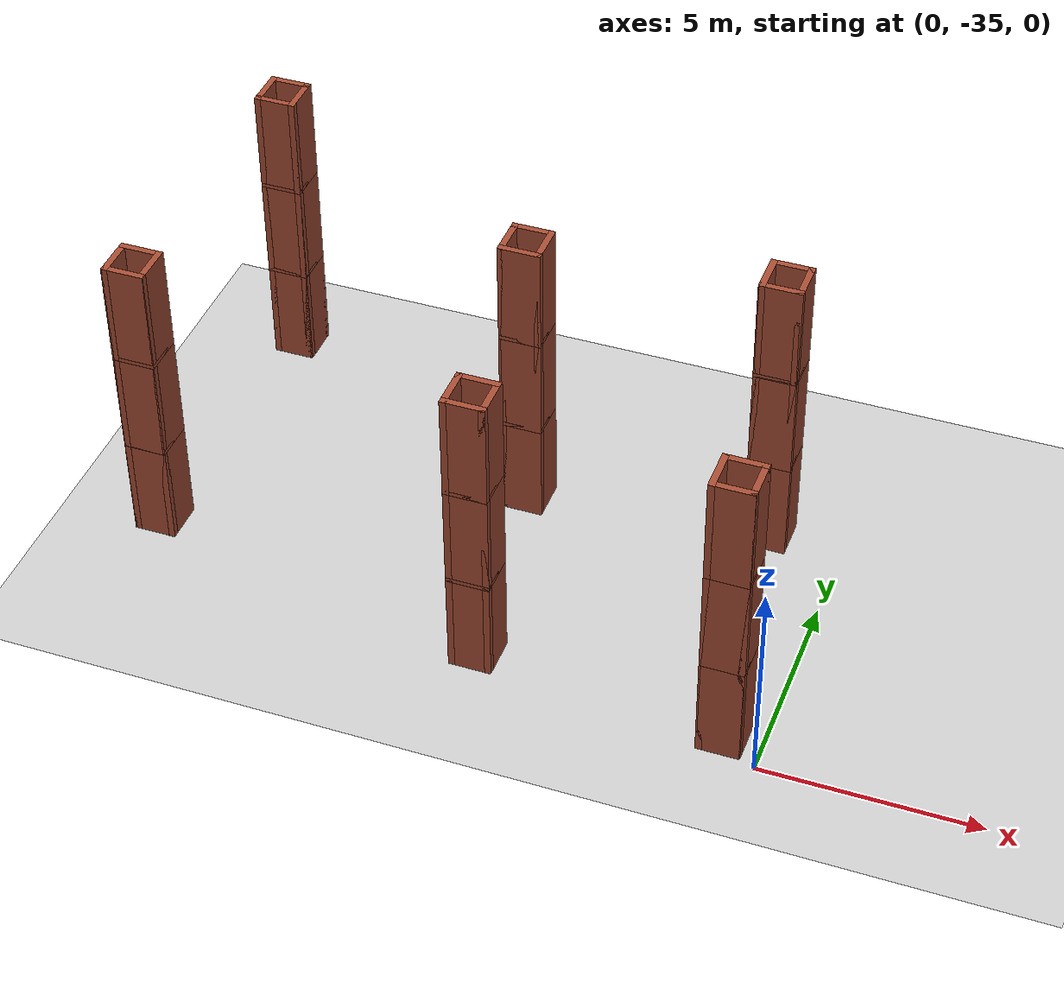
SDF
<sdf version="1.7">
 <world name="default">
  <model name="ground_plane">
   <static>1</static>
   <link name="link">
    <collision name="collision">
     <geometry><plane><normal>0 0 1</normal><size>100 100</size></plane></geometry>
     <surface>
      <contact><collide_bitmask>65535</collide_bitmask></contact>
      <friction><ode><mu>100</mu><mu2>50</mu2></ode></friction>
     </surface>
    </collision>
    <visual name="visual">
     <cast_shadows>0</cast_shadows>
     <geometry><plane><normal>0 0 1</normal><size>100 100</size></plane></geometry>
     <material>
      <script><uri>file://media/materials/scripts/gazebo.material</uri><name>Gazebo/Grey</name></script>
     </material>
    </visual>
   </link>
  </model>
  <model name="wall_model">
   <pose>2.36108 -35 0 0 -0 0</pose>
   <link name="Floor_3">
    <collision name="Floor_3_Collision">
     <geometry><box><size>1 1 0.1</size></box></geometry>
     <pose>0 0 0.05 0 -0 0</pose>
    </collision>
    <visual name="Floor_3_Visual">
     <pose>0 0 0.05 0 -0 0</pose>
     <geometry><box><size>1 1 0.1</size></box></geometry>
     <material>
      <script><uri>file://media/materials/scripts/gazebo.material</uri><name>Gazebo/Bricks</name></script>
      <ambient>1 1 1 1</ambient>
     </material>
     <meta><layer>1</layer></meta>
    </visual>
    <pose>-3.21504 0.623396 2.5 0 -0 0</pose>
   </link>
   <link name="Floor_4">
    <collision name="Floor_4_Collision">
     <geometry><box><size>1 1 0.1</size></box></geometry>
     <pose>0 0 0.05 0 -0 0</pose>
    </collision>
    <visual name="Floor_4_Visual">
     <pose>0 0 0.05 0 -0 0</pose>
     <geometry><box><size>1 1 0.1</size></box></geometry>
     <material>
      <script><uri>file://media/materials/scripts/gazebo.material</uri><name>Gazebo/Bricks</name></script>
      <ambient>1 1 1 1</ambient>
     </material>
     <meta><layer>2</layer></meta>
    </visual>
    <pose>-3.21504 0.623396 5 0 -0 0</pose>
   </link>
   <link name="Wall_19">
    <collision name="Wall_19_Collision">
     <geometry><box><size>1 0.15 2.5</size></box></geometry>
     <pose>0 0 1.25 0 -0 0</pose>
    </collision>
    <visual name="Wall_19_Visual">
     <pose>0 0 1.25 0 -0 0</pose>
     <geometry><box><size>1 0.15 2.5</size></box></geometry>
     <material>
      <script><uri>file://media/materials/scripts/gazebo.material</uri><name>Gazebo/Bricks</name></script>
      <ambient>1 1 1 1</ambient>
     </material>
     <meta><layer>0</layer></meta>
    </visual>
    <pose>-3.64004 0.623396 0 0 -0 1.5708</pose>
   </link>
   <link name="Wall_21">
    <collision name="Wall_21_Collision">
     <geometry><box><size>1 0.15 2.5</size></box></geometry>
     <pose>0 0 1.25 0 -0 0</pose>
    </collision>
    <visual name="Wall_21_Visual">
     <pose>0 0 1.25 0 -0 0</pose>
     <geometry><box><size>1 0.15 2.5</size></box></geometry>
     <material>
      <script><uri>file://media/materials/scripts/gazebo.material</uri><name>Gazebo/Bricks</name></script>
      <ambient>1 1 1 1</ambient>
     </material>
     <meta><layer>0</layer></meta>
    </visual>
    <pose>-3.21504 1.0484 0 0 -0 0</pose>
   </link>
   <link name="Wall_22">
    <collision name="Wall_22_Collision">
     <geometry><box><size>1 0.15 2.5</size></box></geometry>
     <pose>0 0 1.25 0 -0 0</pose>
    </collision>
    <visual name="Wall_22_Visual">
     <pose>0 0 1.25 0 -0 0</pose>
     <geometry><box><size>1 0.15 2.5</size></box></geometry>
     <material>
      <script><uri>file://media/materials/scripts/gazebo.material</uri><name>Gazebo/Bricks</name></script>
      <ambient>1 1 1 1</ambient>
     </material>
     <meta><layer>0</layer></meta>
    </visual>
    <pose>-2.79004 0.623396 0 0 -0 -1.5708</pose>
   </link>
   <link name="Wall_23">
    <collision name="Wall_23_Collision">
     <geometry><box><size>1 0.15 2.5</size></box></geometry>
     <pose>0 0 1.25 0 -0 0</pose>
    </collision>
    <visual name="Wall_23_Visual">
     <pose>0 0 1.25 0 -0 0</pose>
     <geometry><box><size>1 0.15 2.5</size></box></geometry>
     <material>
      <script><uri>file://media/materials/scripts/gazebo.material</uri><name>Gazebo/Bricks</name></script>
      <ambient>1 1 1 1</ambient>
     </material>
     <meta><layer>0</layer></meta>
    </visual>
    <pose>-3.21504 0.198396 0 0 -0 3.14159</pose>
   </link>
   <link name="Wall_25">
    <collision name="Wall_25_Collision">
     <geometry><box><size>1 0.15 2.5</size></box></geometry>
     <pose>0 0 1.25 0 -0 0</pose>
    </collision>
    <visual name="Wall_25_Visual">
     <pose>0 0 1.25 0 -0 0</pose>
     <geometry><box><size>1 0.15 2.5</size></box></geometry>
     <material>
      <script><uri>file://media/materials/scripts/gazebo.material</uri><name>Gazebo/Bricks</name></script>
      <ambient>1 1 1 1</ambient>
     </material>
     <meta><layer>1</layer></meta>
    </visual>
    <pose>-3.64004 0.623396 2.5 0 -0 1.5708</pose>
   </link>
   <link name="Wall_26">
    <collision name="Wall_26_Collision">
     <geometry><box><size>1 0.15 2.5</size></box></geometry>
     <pose>0 0 1.25 0 -0 0</pose>
    </collision>
    <visual name="Wall_26_Visual">
     <pose>0 0 1.25 0 -0 0</pose>
     <geometry><box><size>1 0.15 2.5</size></box></geometry>
     <material>
      <script><uri>file://media/materials/scripts/gazebo.material</uri><name>Gazebo/Bricks</name></script>
      <ambient>1 1 1 1</ambient>
     </material>
     <meta><layer>1</layer></meta>
    </visual>
    <pose>-3.21504 1.0484 2.5 0 -0 0</pose>
   </link>
   <link name="Wall_27">
    <collision name="Wall_27_Collision">
     <geometry><box><size>1 0.15 2.5</size></box></geometry>
     <pose>0 0 1.25 0 -0 0</pose>
    </collision>
    <visual name="Wall_27_Visual">
     <pose>0 0 1.25 0 -0 0</pose>
     <geometry><box><size>1 0.15 2.5</size></box></geometry>
     <material>
      <script><uri>file://media/materials/scripts/gazebo.material</uri><name>Gazebo/Bricks</name></script>
      <ambient>1 1 1 1</ambient>
     </material>
     <meta><layer>1</layer></meta>
    </visual>
    <pose>-2.79004 0.623396 2.5 0 -0 -1.5708</pose>
   </link>
   <link name="Wall_28">
    <collision name="Wall_28_Collision">
     <geometry><box><size>1 0.15 2.5</size></box></geometry>
     <pose>0 0 1.25 0 -0 0</pose>
    </collision>
    <visual name="Wall_28_Visual">
     <pose>0 0 1.25 0 -0 0</pose>
     <geometry><box><size>1 0.15 2.5</size></box></geometry>
     <material>
      <script><uri>file://media/materials/scripts/gazebo.material</uri><name>Gazebo/Bricks</name></script>
      <ambient>1 1 1 1</ambient>
     </material>
     <meta><layer>1</layer></meta>
    </visual>
    <pose>-3.21504 0.198396 2.5 0 -0 3.14159</pose>
   </link>
   <link name="Wall_29">
    <collision name="Wall_29_Collision">
     <geometry><box><size>1 0.15 2.5</size></box></geometry>
     <pose>0 0 1.25 0 -0 0</pose>
    </collision>
    <visual name="Wall_29_Visual">
     <pose>0 0 1.25 0 -0 0</pose>
     <geometry><box><size>1 0.15 2.5</size></box></geometry>
     <material>
      <script><uri>file://media/materials/scripts/gazebo.material</uri><name>Gazebo/Bricks</name></script>
      <ambient>1 1 1 1</ambient>
     </material>
     <meta><layer>2</layer></meta>
    </visual>
    <pose>-3.64004 0.623396 5 0 -0 1.5708</pose>
   </link>
   <link name="Wall_30">
    <collision name="Wall_30_Collision">
     <geometry><box><size>1 0.15 2.5</size></box></geometry>
     <pose>0 0 1.25 0 -0 0</pose>
    </collision>
    <visual name="Wall_30_Visual">
     <pose>0 0 1.25 0 -0 0</pose>
     <geometry><box><size>1 0.15 2.5</size></box></geometry>
     <material>
      <script><uri>file://media/materials/scripts/gazebo.material</uri><name>Gazebo/Bricks</name></script>
      <ambient>1 1 1 1</ambient>
     </material>
     <meta><layer>2</layer></meta>
    </visual>
    <pose>-3.21504 1.0484 5 0 -0 0</pose>
   </link>
   <link name="Wall_31">
    <collision name="Wall_31_Collision">
     <geometry><box><size>1 0.15 2.5</size></box></geometry>
     <pose>0 0 1.25 0 -0 0</pose>
    </collision>
    <visual name="Wall_31_Visual">
     <pose>0 0 1.25 0 -0 0</pose>
     <geometry><box><size>1 0.15 2.5</size></box></geometry>
     <material>
      <script><uri>file://media/materials/scripts/gazebo.material</uri><name>Gazebo/Bricks</name></script>
      <ambient>1 1 1 1</ambient>
     </material>
     <meta><layer>2</layer></meta>
    </visual>
    <pose>-2.79004 0.623396 5 0 -0 -1.5708</pose>
   </link>
   <link name="Wall_32">
    <collision name="Wall_32_Collision">
     <geometry><box><size>1 0.15 2.5</size></box></geometry>
     <pose>0 0 1.25 0 -0 0</pose>
    </collision>
    <visual name="Wall_32_Visual">
     <pose>0 0 1.25 0 -0 0</pose>
     <geometry><box><size>1 0.15 2.5</size></box></geometry>
     <material>
      <script><uri>file://media/materials/scripts/gazebo.material</uri><name>Gazebo/Bricks</name></script>
      <ambient>1 1 1 1</ambient>
     </material>
     <meta><layer>2</layer></meta>
    </visual>
    <pose>-3.21504 0.198396 5 0 -0 3.14159</pose>
   </link>
   <static>1</static>
  </model>
  <model name="wall_model_clone_2">
   <pose>1.47387 -28.567 0 0 -0 0</pose>
   <link name="Floor_3">
    <collision name="Floor_3_Collision">
     <geometry><box><size>1 1 0.1</size></box></geometry>
     <pose>0 0 0.05 0 -0 0</pose>
    </collision>
    <visual name="Floor_3_Visual">
     <pose>0 0 0.05 0 -0 0</pose>
     <geometry><box><size>1 1 0.1</size></box></geometry>
     <material>
      <script><uri>file://media/materials/scripts/gazebo.material</uri><name>Gazebo/Bricks</name></script>
      <ambient>1 1 1 1</ambient>
     </material>
     <meta><layer>1</layer></meta>
    </visual>
    <pose>-3.21504 0.623396 2.5 0 -0 0</pose>
   </link>
   <link name="Floor_4">
    <collision name="Floor_4_Collision">
     <geometry><box><size>1 1 0.1</size></box></geometry>
     <pose>0 0 0.05 0 -0 0</pose>
    </collision>
    <visual name="Floor_4_Visual">
     <pose>0 0 0.05 0 -0 0</pose>
     <geometry><box><size>1 1 0.1</size></box></geometry>
     <material>
      <script><uri>file://media/materials/scripts/gazebo.material</uri><name>Gazebo/Bricks</name></script>
      <ambient>1 1 1 1</ambient>
     </material>
     <meta><layer>2</layer></meta>
    </visual>
    <pose>-3.21504 0.623396 5 0 -0 0</pose>
   </link>
   <link name="Wall_19">
    <collision name="Wall_19_Collision">
     <geometry><box><size>1 0.15 2.5</size></box></geometry>
     <pose>0 0 1.25 0 -0 0</pose>
    </collision>
    <visual name="Wall_19_Visual">
     <pose>0 0 1.25 0 -0 0</pose>
     <geometry><box><size>1 0.15 2.5</size></box></geometry>
     <material>
      <script><uri>file://media/materials/scripts/gazebo.material</uri><name>Gazebo/Bricks</name></script>
      <ambient>1 1 1 1</ambient>
     </material>
     <meta><layer>0</layer></meta>
    </visual>
    <pose>-3.64004 0.623396 0 0 -0 1.5708</pose>
   </link>
   <link name="Wall_21">
    <collision name="Wall_21_Collision">
     <geometry><box><size>1 0.15 2.5</size></box></geometry>
     <pose>0 0 1.25 0 -0 0</pose>
    </collision>
    <visual name="Wall_21_Visual">
     <pose>0 0 1.25 0 -0 0</pose>
     <geometry><box><size>1 0.15 2.5</size></box></geometry>
     <material>
      <script><uri>file://media/materials/scripts/gazebo.material</uri><name>Gazebo/Bricks</name></script>
      <ambient>1 1 1 1</ambient>
     </material>
     <meta><layer>0</layer></meta>
    </visual>
    <pose>-3.21504 1.0484 0 0 -0 0</pose>
   </link>
   <link name="Wall_22">
    <collision name="Wall_22_Collision">
     <geometry><box><size>1 0.15 2.5</size></box></geometry>
     <pose>0 0 1.25 0 -0 0</pose>
    </collision>
    <visual name="Wall_22_Visual">
     <pose>0 0 1.25 0 -0 0</pose>
     <geometry><box><size>1 0.15 2.5</size></box></geometry>
     <material>
      <script><uri>file://media/materials/scripts/gazebo.material</uri><name>Gazebo/Bricks</name></script>
      <ambient>1 1 1 1</ambient>
     </material>
     <meta><layer>0</layer></meta>
    </visual>
    <pose>-2.79004 0.623396 0 0 -0 -1.5708</pose>
   </link>
   <link name="Wall_23">
    <collision name="Wall_23_Collision">
     <geometry><box><size>1 0.15 2.5</size></box></geometry>
     <pose>0 0 1.25 0 -0 0</pose>
    </collision>
    <visual name="Wall_23_Visual">
     <pose>0 0 1.25 0 -0 0</pose>
     <geometry><box><size>1 0.15 2.5</size></box></geometry>
     <material>
      <script><uri>file://media/materials/scripts/gazebo.material</uri><name>Gazebo/Bricks</name></script>
      <ambient>1 1 1 1</ambient>
     </material>
     <meta><layer>0</layer></meta>
    </visual>
    <pose>-3.21504 0.198396 0 0 -0 3.14159</pose>
   </link>
   <link name="Wall_25">
    <collision name="Wall_25_Collision">
     <geometry><box><size>1 0.15 2.5</size></box></geometry>
     <pose>0 0 1.25 0 -0 0</pose>
    </collision>
    <visual name="Wall_25_Visual">
     <pose>0 0 1.25 0 -0 0</pose>
     <geometry><box><size>1 0.15 2.5</size></box></geometry>
     <material>
      <script><uri>file://media/materials/scripts/gazebo.material</uri><name>Gazebo/Bricks</name></script>
      <ambient>1 1 1 1</ambient>
     </material>
     <meta><layer>1</layer></meta>
    </visual>
    <pose>-3.64004 0.623396 2.5 0 -0 1.5708</pose>
   </link>
   <link name="Wall_26">
    <collision name="Wall_26_Collision">
     <geometry><box><size>1 0.15 2.5</size></box></geometry>
     <pose>0 0 1.25 0 -0 0</pose>
    </collision>
    <visual name="Wall_26_Visual">
     <pose>0 0 1.25 0 -0 0</pose>
     <geometry><box><size>1 0.15 2.5</size></box></geometry>
     <material>
      <script><uri>file://media/materials/scripts/gazebo.material</uri><name>Gazebo/Bricks</name></script>
      <ambient>1 1 1 1</ambient>
     </material>
     <meta><layer>1</layer></meta>
    </visual>
    <pose>-3.21504 1.0484 2.5 0 -0 0</pose>
   </link>
   <link name="Wall_27">
    <collision name="Wall_27_Collision">
     <geometry><box><size>1 0.15 2.5</size></box></geometry>
     <pose>0 0 1.25 0 -0 0</pose>
    </collision>
    <visual name="Wall_27_Visual">
     <pose>0 0 1.25 0 -0 0</pose>
     <geometry><box><size>1 0.15 2.5</size></box></geometry>
     <material>
      <script><uri>file://media/materials/scripts/gazebo.material</uri><name>Gazebo/Bricks</name></script>
      <ambient>1 1 1 1</ambient>
     </material>
     <meta><layer>1</layer></meta>
    </visual>
    <pose>-2.79004 0.623396 2.5 0 -0 -1.5708</pose>
   </link>
   <link name="Wall_28">
    <collision name="Wall_28_Collision">
     <geometry><box><size>1 0.15 2.5</size></box></geometry>
     <pose>0 0 1.25 0 -0 0</pose>
    </collision>
    <visual name="Wall_28_Visual">
     <pose>0 0 1.25 0 -0 0</pose>
     <geometry><box><size>1 0.15 2.5</size></box></geometry>
     <material>
      <script><uri>file://media/materials/scripts/gazebo.material</uri><name>Gazebo/Bricks</name></script>
      <ambient>1 1 1 1</ambient>
     </material>
     <meta><layer>1</layer></meta>
    </visual>
    <pose>-3.21504 0.198396 2.5 0 -0 3.14159</pose>
   </link>
   <link name="Wall_29">
    <collision name="Wall_29_Collision">
     <geometry><box><size>1 0.15 2.5</size></box></geometry>
     <pose>0 0 1.25 0 -0 0</pose>
    </collision>
    <visual name="Wall_29_Visual">
     <pose>0 0 1.25 0 -0 0</pose>
     <geometry><box><size>1 0.15 2.5</size></box></geometry>
     <material>
      <script><uri>file://media/materials/scripts/gazebo.material</uri><name>Gazebo/Bricks</name></script>
      <ambient>1 1 1 1</ambient>
     </material>
     <meta><layer>2</layer></meta>
    </visual>
    <pose>-3.64004 0.623396 5 0 -0 1.5708</pose>
   </link>
   <link name="Wall_30">
    <collision name="Wall_30_Collision">
     <geometry><box><size>1 0.15 2.5</size></box></geometry>
     <pose>0 0 1.25 0 -0 0</pose>
    </collision>
    <visual name="Wall_30_Visual">
     <pose>0 0 1.25 0 -0 0</pose>
     <geometry><box><size>1 0.15 2.5</size></box></geometry>
     <material>
      <script><uri>file://media/materials/scripts/gazebo.material</uri><name>Gazebo/Bricks</name></script>
      <ambient>1 1 1 1</ambient>
     </material>
     <meta><layer>2</layer></meta>
    </visual>
    <pose>-3.21504 1.0484 5 0 -0 0</pose>
   </link>
   <link name="Wall_31">
    <collision name="Wall_31_Collision">
     <geometry><box><size>1 0.15 2.5</size></box></geometry>
     <pose>0 0 1.25 0 -0 0</pose>
    </collision>
    <visual name="Wall_31_Visual">
     <pose>0 0 1.25 0 -0 0</pose>
     <geometry><box><size>1 0.15 2.5</size></box></geometry>
     <material>
      <script><uri>file://media/materials/scripts/gazebo.material</uri><name>Gazebo/Bricks</name></script>
      <ambient>1 1 1 1</ambient>
     </material>
     <meta><layer>2</layer></meta>
    </visual>
    <pose>-2.79004 0.623396 5 0 -0 -1.5708</pose>
   </link>
   <link name="Wall_32">
    <collision name="Wall_32_Collision">
     <geometry><box><size>1 0.15 2.5</size></box></geometry>
     <pose>0 0 1.25 0 -0 0</pose>
    </collision>
    <visual name="Wall_32_Visual">
     <pose>0 0 1.25 0 -0 0</pose>
     <geometry><box><size>1 0.15 2.5</size></box></geometry>
     <material>
      <script><uri>file://media/materials/scripts/gazebo.material</uri><name>Gazebo/Bricks</name></script>
      <ambient>1 1 1 1</ambient>
     </material>
     <meta><layer>2</layer></meta>
    </visual>
    <pose>-3.21504 0.198396 5 0 -0 3.14159</pose>
   </link>
   <static>1</static>
  </model>
  <model name="wall_model_clone_6">
   <pose>-4.21999 -29.2174 0 0 -0 0</pose>
   <link name="Floor_3">
    <collision name="Floor_3_Collision">
     <geometry><box><size>1 1 0.1</size></box></geometry>
     <pose>0 0 0.05 0 -0 0</pose>
    </collision>
    <visual name="Floor_3_Visual">
     <pose>0 0 0.05 0 -0 0</pose>
     <geometry><box><size>1 1 0.1</size></box></geometry>
     <material>
      <script><uri>file://media/materials/scripts/gazebo.material</uri><name>Gazebo/Bricks</name></script>
      <ambient>1 1 1 1</ambient>
     </material>
     <meta><layer>1</layer></meta>
    </visual>
    <pose>-3.21504 0.623396 2.5 0 -0 0</pose>
   </link>
   <link name="Floor_4">
    <collision name="Floor_4_Collision">
     <geometry><box><size>1 1 0.1</size></box></geometry>
     <pose>0 0 0.05 0 -0 0</pose>
    </collision>
    <visual name="Floor_4_Visual">
     <pose>0 0 0.05 0 -0 0</pose>
     <geometry><box><size>1 1 0.1</size></box></geometry>
     <material>
      <script><uri>file://media/materials/scripts/gazebo.material</uri><name>Gazebo/Bricks</name></script>
      <ambient>1 1 1 1</ambient>
     </material>
     <meta><layer>2</layer></meta>
    </visual>
    <pose>-3.21504 0.623396 5 0 -0 0</pose>
   </link>
   <link name="Wall_19">
    <collision name="Wall_19_Collision">
     <geometry><box><size>1 0.15 2.5</size></box></geometry>
     <pose>0 0 1.25 0 -0 0</pose>
    </collision>
    <visual name="Wall_19_Visual">
     <pose>0 0 1.25 0 -0 0</pose>
     <geometry><box><size>1 0.15 2.5</size></box></geometry>
     <material>
      <script><uri>file://media/materials/scripts/gazebo.material</uri><name>Gazebo/Bricks</name></script>
      <ambient>1 1 1 1</ambient>
     </material>
     <meta><layer>0</layer></meta>
    </visual>
    <pose>-3.64004 0.623396 0 0 -0 1.5708</pose>
   </link>
   <link name="Wall_21">
    <collision name="Wall_21_Collision">
     <geometry><box><size>1 0.15 2.5</size></box></geometry>
     <pose>0 0 1.25 0 -0 0</pose>
    </collision>
    <visual name="Wall_21_Visual">
     <pose>0 0 1.25 0 -0 0</pose>
     <geometry><box><size>1 0.15 2.5</size></box></geometry>
     <material>
      <script><uri>file://media/materials/scripts/gazebo.material</uri><name>Gazebo/Bricks</name></script>
      <ambient>1 1 1 1</ambient>
     </material>
     <meta><layer>0</layer></meta>
    </visual>
    <pose>-3.21504 1.0484 0 0 -0 0</pose>
   </link>
   <link name="Wall_22">
    <collision name="Wall_22_Collision">
     <geometry><box><size>1 0.15 2.5</size></box></geometry>
     <pose>0 0 1.25 0 -0 0</pose>
    </collision>
    <visual name="Wall_22_Visual">
     <pose>0 0 1.25 0 -0 0</pose>
     <geometry><box><size>1 0.15 2.5</size></box></geometry>
     <material>
      <script><uri>file://media/materials/scripts/gazebo.material</uri><name>Gazebo/Bricks</name></script>
      <ambient>1 1 1 1</ambient>
     </material>
     <meta><layer>0</layer></meta>
    </visual>
    <pose>-2.79004 0.623396 0 0 -0 -1.5708</pose>
   </link>
   <link name="Wall_23">
    <collision name="Wall_23_Collision">
     <geometry><box><size>1 0.15 2.5</size></box></geometry>
     <pose>0 0 1.25 0 -0 0</pose>
    </collision>
    <visual name="Wall_23_Visual">
     <pose>0 0 1.25 0 -0 0</pose>
     <geometry><box><size>1 0.15 2.5</size></box></geometry>
     <material>
      <script><uri>file://media/materials/scripts/gazebo.material</uri><name>Gazebo/Bricks</name></script>
      <ambient>1 1 1 1</ambient>
     </material>
     <meta><layer>0</layer></meta>
    </visual>
    <pose>-3.21504 0.198396 0 0 -0 3.14159</pose>
   </link>
   <link name="Wall_25">
    <collision name="Wall_25_Collision">
     <geometry><box><size>1 0.15 2.5</size></box></geometry>
     <pose>0 0 1.25 0 -0 0</pose>
    </collision>
    <visual name="Wall_25_Visual">
     <pose>0 0 1.25 0 -0 0</pose>
     <geometry><box><size>1 0.15 2.5</size></box></geometry>
     <material>
      <script><uri>file://media/materials/scripts/gazebo.material</uri><name>Gazebo/Bricks</name></script>
      <ambient>1 1 1 1</ambient>
     </material>
     <meta><layer>1</layer></meta>
    </visual>
    <pose>-3.64004 0.623396 2.5 0 -0 1.5708</pose>
   </link>
   <link name="Wall_26">
    <collision name="Wall_26_Collision">
     <geometry><box><size>1 0.15 2.5</size></box></geometry>
     <pose>0 0 1.25 0 -0 0</pose>
    </collision>
    <visual name="Wall_26_Visual">
     <pose>0 0 1.25 0 -0 0</pose>
     <geometry><box><size>1 0.15 2.5</size></box></geometry>
     <material>
      <script><uri>file://media/materials/scripts/gazebo.material</uri><name>Gazebo/Bricks</name></script>
      <ambient>1 1 1 1</ambient>
     </material>
     <meta><layer>1</layer></meta>
    </visual>
    <pose>-3.21504 1.0484 2.5 0 -0 0</pose>
   </link>
   <link name="Wall_27">
    <collision name="Wall_27_Collision">
     <geometry><box><size>1 0.15 2.5</size></box></geometry>
     <pose>0 0 1.25 0 -0 0</pose>
    </collision>
    <visual name="Wall_27_Visual">
     <pose>0 0 1.25 0 -0 0</pose>
     <geometry><box><size>1 0.15 2.5</size></box></geometry>
     <material>
      <script><uri>file://media/materials/scripts/gazebo.material</uri><name>Gazebo/Bricks</name></script>
      <ambient>1 1 1 1</ambient>
     </material>
     <meta><layer>1</layer></meta>
    </visual>
    <pose>-2.79004 0.623396 2.5 0 -0 -1.5708</pose>
   </link>
   <link name="Wall_28">
    <collision name="Wall_28_Collision">
     <geometry><box><size>1 0.15 2.5</size></box></geometry>
     <pose>0 0 1.25 0 -0 0</pose>
    </collision>
    <visual name="Wall_28_Visual">
     <pose>0 0 1.25 0 -0 0</pose>
     <geometry><box><size>1 0.15 2.5</size></box></geometry>
     <material>
      <script><uri>file://media/materials/scripts/gazebo.material</uri><name>Gazebo/Bricks</name></script>
      <ambient>1 1 1 1</ambient>
     </material>
     <meta><layer>1</layer></meta>
    </visual>
    <pose>-3.21504 0.198396 2.5 0 -0 3.14159</pose>
   </link>
   <link name="Wall_29">
    <collision name="Wall_29_Collision">
     <geometry><box><size>1 0.15 2.5</size></box></geometry>
     <pose>0 0 1.25 0 -0 0</pose>
    </collision>
    <visual name="Wall_29_Visual">
     <pose>0 0 1.25 0 -0 0</pose>
     <geometry><box><size>1 0.15 2.5</size></box></geometry>
     <material>
      <script><uri>file://media/materials/scripts/gazebo.material</uri><name>Gazebo/Bricks</name></script>
      <ambient>1 1 1 1</ambient>
     </material>
     <meta><layer>2</layer></meta>
    </visual>
    <pose>-3.64004 0.623396 5 0 -0 1.5708</pose>
   </link>
   <link name="Wall_30">
    <collision name="Wall_30_Collision">
     <geometry><box><size>1 0.15 2.5</size></box></geometry>
     <pose>0 0 1.25 0 -0 0</pose>
    </collision>
    <visual name="Wall_30_Visual">
     <pose>0 0 1.25 0 -0 0</pose>
     <geometry><box><size>1 0.15 2.5</size></box></geometry>
     <material>
      <script><uri>file://media/materials/scripts/gazebo.material</uri><name>Gazebo/Bricks</name></script>
      <ambient>1 1 1 1</ambient>
     </material>
     <meta><layer>2</layer></meta>
    </visual>
    <pose>-3.21504 1.0484 5 0 -0 0</pose>
   </link>
   <link name="Wall_31">
    <collision name="Wall_31_Collision">
     <geometry><box><size>1 0.15 2.5</size></box></geometry>
     <pose>0 0 1.25 0 -0 0</pose>
    </collision>
    <visual name="Wall_31_Visual">
     <pose>0 0 1.25 0 -0 0</pose>
     <geometry><box><size>1 0.15 2.5</size></box></geometry>
     <material>
      <script><uri>file://media/materials/scripts/gazebo.material</uri><name>Gazebo/Bricks</name></script>
      <ambient>1 1 1 1</ambient>
     </material>
     <meta><layer>2</layer></meta>
    </visual>
    <pose>-2.79004 0.623396 5 0 -0 -1.5708</pose>
   </link>
   <link name="Wall_32">
    <collision name="Wall_32_Collision">
     <geometry><box><size>1 0.15 2.5</size></box></geometry>
     <pose>0 0 1.25 0 -0 0</pose>
    </collision>
    <visual name="Wall_32_Visual">
     <pose>0 0 1.25 0 -0 0</pose>
     <geometry><box><size>1 0.15 2.5</size></box></geometry>
     <material>
      <script><uri>file://media/materials/scripts/gazebo.material</uri><name>Gazebo/Bricks</name></script>
      <ambient>1 1 1 1</ambient>
     </material>
     <meta><layer>2</layer></meta>
    </visual>
    <pose>-3.21504 0.198396 5 0 -0 3.14159</pose>
   </link>
   <static>1</static>
  </model>
  <model name="wall_model_clone_7">
   <pose>-3.49076 -34.4343 0 0 -0 0</pose>
   <link name="Floor_3">
    <collision name="Floor_3_Collision">
     <geometry><box><size>1 1 0.1</size></box></geometry>
     <pose>0 0 0.05 0 -0 0</pose>
    </collision>
    <visual name="Floor_3_Visual">
     <pose>0 0 0.05 0 -0 0</pose>
     <geometry><box><size>1 1 0.1</size></box></geometry>
     <material>
      <script><uri>file://media/materials/scripts/gazebo.material</uri><name>Gazebo/Bricks</name></script>
      <ambient>1 1 1 1</ambient>
     </material>
     <meta><layer>1</layer></meta>
    </visual>
    <pose>-3.21504 0.623396 2.5 0 -0 0</pose>
   </link>
   <link name="Floor_4">
    <collision name="Floor_4_Collision">
     <geometry><box><size>1 1 0.1</size></box></geometry>
     <pose>0 0 0.05 0 -0 0</pose>
    </collision>
    <visual name="Floor_4_Visual">
     <pose>0 0 0.05 0 -0 0</pose>
     <geometry><box><size>1 1 0.1</size></box></geometry>
     <material>
      <script><uri>file://media/materials/scripts/gazebo.material</uri><name>Gazebo/Bricks</name></script>
      <ambient>1 1 1 1</ambient>
     </material>
     <meta><layer>2</layer></meta>
    </visual>
    <pose>-3.21504 0.623396 5 0 -0 0</pose>
   </link>
   <link name="Wall_19">
    <collision name="Wall_19_Collision">
     <geometry><box><size>1 0.15 2.5</size></box></geometry>
     <pose>0 0 1.25 0 -0 0</pose>
    </collision>
    <visual name="Wall_19_Visual">
     <pose>0 0 1.25 0 -0 0</pose>
     <geometry><box><size>1 0.15 2.5</size></box></geometry>
     <material>
      <script><uri>file://media/materials/scripts/gazebo.material</uri><name>Gazebo/Bricks</name></script>
      <ambient>1 1 1 1</ambient>
     </material>
     <meta><layer>0</layer></meta>
    </visual>
    <pose>-3.64004 0.623396 0 0 -0 1.5708</pose>
   </link>
   <link name="Wall_21">
    <collision name="Wall_21_Collision">
     <geometry><box><size>1 0.15 2.5</size></box></geometry>
     <pose>0 0 1.25 0 -0 0</pose>
    </collision>
    <visual name="Wall_21_Visual">
     <pose>0 0 1.25 0 -0 0</pose>
     <geometry><box><size>1 0.15 2.5</size></box></geometry>
     <material>
      <script><uri>file://media/materials/scripts/gazebo.material</uri><name>Gazebo/Bricks</name></script>
      <ambient>1 1 1 1</ambient>
     </material>
     <meta><layer>0</layer></meta>
    </visual>
    <pose>-3.21504 1.0484 0 0 -0 0</pose>
   </link>
   <link name="Wall_22">
    <collision name="Wall_22_Collision">
     <geometry><box><size>1 0.15 2.5</size></box></geometry>
     <pose>0 0 1.25 0 -0 0</pose>
    </collision>
    <visual name="Wall_22_Visual">
     <pose>0 0 1.25 0 -0 0</pose>
     <geometry><box><size>1 0.15 2.5</size></box></geometry>
     <material>
      <script><uri>file://media/materials/scripts/gazebo.material</uri><name>Gazebo/Bricks</name></script>
      <ambient>1 1 1 1</ambient>
     </material>
     <meta><layer>0</layer></meta>
    </visual>
    <pose>-2.79004 0.623396 0 0 -0 -1.5708</pose>
   </link>
   <link name="Wall_23">
    <collision name="Wall_23_Collision">
     <geometry><box><size>1 0.15 2.5</size></box></geometry>
     <pose>0 0 1.25 0 -0 0</pose>
    </collision>
    <visual name="Wall_23_Visual">
     <pose>0 0 1.25 0 -0 0</pose>
     <geometry><box><size>1 0.15 2.5</size></box></geometry>
     <material>
      <script><uri>file://media/materials/scripts/gazebo.material</uri><name>Gazebo/Bricks</name></script>
      <ambient>1 1 1 1</ambient>
     </material>
     <meta><layer>0</layer></meta>
    </visual>
    <pose>-3.21504 0.198396 0 0 -0 3.14159</pose>
   </link>
   <link name="Wall_25">
    <collision name="Wall_25_Collision">
     <geometry><box><size>1 0.15 2.5</size></box></geometry>
     <pose>0 0 1.25 0 -0 0</pose>
    </collision>
    <visual name="Wall_25_Visual">
     <pose>0 0 1.25 0 -0 0</pose>
     <geometry><box><size>1 0.15 2.5</size></box></geometry>
     <material>
      <script><uri>file://media/materials/scripts/gazebo.material</uri><name>Gazebo/Bricks</name></script>
      <ambient>1 1 1 1</ambient>
     </material>
     <meta><layer>1</layer></meta>
    </visual>
    <pose>-3.64004 0.623396 2.5 0 -0 1.5708</pose>
   </link>
   <link name="Wall_26">
    <collision name="Wall_26_Collision">
     <geometry><box><size>1 0.15 2.5</size></box></geometry>
     <pose>0 0 1.25 0 -0 0</pose>
    </collision>
    <visual name="Wall_26_Visual">
     <pose>0 0 1.25 0 -0 0</pose>
     <geometry><box><size>1 0.15 2.5</size></box></geometry>
     <material>
      <script><uri>file://media/materials/scripts/gazebo.material</uri><name>Gazebo/Bricks</name></script>
      <ambient>1 1 1 1</ambient>
     </material>
     <meta><layer>1</layer></meta>
    </visual>
    <pose>-3.21504 1.0484 2.5 0 -0 0</pose>
   </link>
   <link name="Wall_27">
    <collision name="Wall_27_Collision">
     <geometry><box><size>1 0.15 2.5</size></box></geometry>
     <pose>0 0 1.25 0 -0 0</pose>
    </collision>
    <visual name="Wall_27_Visual">
     <pose>0 0 1.25 0 -0 0</pose>
     <geometry><box><size>1 0.15 2.5</size></box></geometry>
     <material>
      <script><uri>file://media/materials/scripts/gazebo.material</uri><name>Gazebo/Bricks</name></script>
      <ambient>1 1 1 1</ambient>
     </material>
     <meta><layer>1</layer></meta>
    </visual>
    <pose>-2.79004 0.623396 2.5 0 -0 -1.5708</pose>
   </link>
   <link name="Wall_28">
    <collision name="Wall_28_Collision">
     <geometry><box><size>1 0.15 2.5</size></box></geometry>
     <pose>0 0 1.25 0 -0 0</pose>
    </collision>
    <visual name="Wall_28_Visual">
     <pose>0 0 1.25 0 -0 0</pose>
     <geometry><box><size>1 0.15 2.5</size></box></geometry>
     <material>
      <script><uri>file://media/materials/scripts/gazebo.material</uri><name>Gazebo/Bricks</name></script>
      <ambient>1 1 1 1</ambient>
     </material>
     <meta><layer>1</layer></meta>
    </visual>
    <pose>-3.21504 0.198396 2.5 0 -0 3.14159</pose>
   </link>
   <link name="Wall_29">
    <collision name="Wall_29_Collision">
     <geometry><box><size>1 0.15 2.5</size></box></geometry>
     <pose>0 0 1.25 0 -0 0</pose>
    </collision>
    <visual name="Wall_29_Visual">
     <pose>0 0 1.25 0 -0 0</pose>
     <geometry><box><size>1 0.15 2.5</size></box></geometry>
     <material>
      <script><uri>file://media/materials/scripts/gazebo.material</uri><name>Gazebo/Bricks</name></script>
      <ambient>1 1 1 1</ambient>
     </material>
     <meta><layer>2</layer></meta>
    </visual>
    <pose>-3.64004 0.623396 5 0 -0 1.5708</pose>
   </link>
   <link name="Wall_30">
    <collision name="Wall_30_Collision">
     <geometry><box><size>1 0.15 2.5</size></box></geometry>
     <pose>0 0 1.25 0 -0 0</pose>
    </collision>
    <visual name="Wall_30_Visual">
     <pose>0 0 1.25 0 -0 0</pose>
     <geometry><box><size>1 0.15 2.5</size></box></geometry>
     <material>
      <script><uri>file://media/materials/scripts/gazebo.material</uri><name>Gazebo/Bricks</name></script>
      <ambient>1 1 1 1</ambient>
     </material>
     <meta><layer>2</layer></meta>
    </visual>
    <pose>-3.21504 1.0484 5 0 -0 0</pose>
   </link>
   <link name="Wall_31">
    <collision name="Wall_31_Collision">
     <geometry><box><size>1 0.15 2.5</size></box></geometry>
     <pose>0 0 1.25 0 -0 0</pose>
    </collision>
    <visual name="Wall_31_Visual">
     <pose>0 0 1.25 0 -0 0</pose>
     <geometry><box><size>1 0.15 2.5</size></box></geometry>
     <material>
      <script><uri>file://media/materials/scripts/gazebo.material</uri><name>Gazebo/Bricks</name></script>
      <ambient>1 1 1 1</ambient>
     </material>
     <meta><layer>2</layer></meta>
    </visual>
    <pose>-2.79004 0.623396 5 0 -0 -1.5708</pose>
   </link>
   <link name="Wall_32">
    <collision name="Wall_32_Collision">
     <geometry><box><size>1 0.15 2.5</size></box></geometry>
     <pose>0 0 1.25 0 -0 0</pose>
    </collision>
    <visual name="Wall_32_Visual">
     <pose>0 0 1.25 0 -0 0</pose>
     <geometry><box><size>1 0.15 2.5</size></box></geometry>
     <material>
      <script><uri>file://media/materials/scripts/gazebo.material</uri><name>Gazebo/Bricks</name></script>
      <ambient>1 1 1 1</ambient>
     </material>
     <meta><layer>2</layer></meta>
    </visual>
    <pose>-3.21504 0.198396 5 0 -0 3.14159</pose>
   </link>
   <static>1</static>
  </model>
  <model name="wall_model_clone_15">
   <pose>-11.5965 -25.6942 0 0 -0 0</pose>
   <link name="Floor_3">
    <collision name="Floor_3_Collision">
     <geometry><box><size>1 1 0.1</size></box></geometry>
     <pose>0 0 0.05 0 -0 0</pose>
    </collision>
    <visual name="Floor_3_Visual">
     <pose>0 0 0.05 0 -0 0</pose>
     <geometry><box><size>1 1 0.1</size></box></geometry>
     <material>
      <script><uri>file://media/materials/scripts/gazebo.material</uri><name>Gazebo/Bricks</name></script>
      <ambient>1 1 1 1</ambient>
     </material>
     <meta><layer>1</layer></meta>
    </visual>
    <pose>-3.21504 0.623396 2.5 0 -0 0</pose>
   </link>
   <link name="Floor_4">
    <collision name="Floor_4_Collision">
     <geometry><box><size>1 1 0.1</size></box></geometry>
     <pose>0 0 0.05 0 -0 0</pose>
    </collision>
    <visual name="Floor_4_Visual">
     <pose>0 0 0.05 0 -0 0</pose>
     <geometry><box><size>1 1 0.1</size></box></geometry>
     <material>
      <script><uri>file://media/materials/scripts/gazebo.material</uri><name>Gazebo/Bricks</name></script>
      <ambient>1 1 1 1</ambient>
     </material>
     <meta><layer>2</layer></meta>
    </visual>
    <pose>-3.21504 0.623396 5 0 -0 0</pose>
   </link>
   <link name="Wall_19">
    <collision name="Wall_19_Collision">
     <geometry><box><size>1 0.15 2.5</size></box></geometry>
     <pose>0 0 1.25 0 -0 0</pose>
    </collision>
    <visual name="Wall_19_Visual">
     <pose>0 0 1.25 0 -0 0</pose>
     <geometry><box><size>1 0.15 2.5</size></box></geometry>
     <material>
      <script><uri>file://media/materials/scripts/gazebo.material</uri><name>Gazebo/Bricks</name></script>
      <ambient>1 1 1 1</ambient>
     </material>
     <meta><layer>0</layer></meta>
    </visual>
    <pose>-3.64004 0.623396 0 0 -0 1.5708</pose>
   </link>
   <link name="Wall_21">
    <collision name="Wall_21_Collision">
     <geometry><box><size>1 0.15 2.5</size></box></geometry>
     <pose>0 0 1.25 0 -0 0</pose>
    </collision>
    <visual name="Wall_21_Visual">
     <pose>0 0 1.25 0 -0 0</pose>
     <geometry><box><size>1 0.15 2.5</size></box></geometry>
     <material>
      <script><uri>file://media/materials/scripts/gazebo.material</uri><name>Gazebo/Bricks</name></script>
      <ambient>1 1 1 1</ambient>
     </material>
     <meta><layer>0</layer></meta>
    </visual>
    <pose>-3.21504 1.0484 0 0 -0 0</pose>
   </link>
   <link name="Wall_22">
    <collision name="Wall_22_Collision">
     <geometry><box><size>1 0.15 2.5</size></box></geometry>
     <pose>0 0 1.25 0 -0 0</pose>
    </collision>
    <visual name="Wall_22_Visual">
     <pose>0 0 1.25 0 -0 0</pose>
     <geometry><box><size>1 0.15 2.5</size></box></geometry>
     <material>
      <script><uri>file://media/materials/scripts/gazebo.material</uri><name>Gazebo/Bricks</name></script>
      <ambient>1 1 1 1</ambient>
     </material>
     <meta><layer>0</layer></meta>
    </visual>
    <pose>-2.79004 0.623396 0 0 -0 -1.5708</pose>
   </link>
   <link name="Wall_23">
    <collision name="Wall_23_Collision">
     <geometry><box><size>1 0.15 2.5</size></box></geometry>
     <pose>0 0 1.25 0 -0 0</pose>
    </collision>
    <visual name="Wall_23_Visual">
     <pose>0 0 1.25 0 -0 0</pose>
     <geometry><box><size>1 0.15 2.5</size></box></geometry>
     <material>
      <script><uri>file://media/materials/scripts/gazebo.material</uri><name>Gazebo/Bricks</name></script>
      <ambient>1 1 1 1</ambient>
     </material>
     <meta><layer>0</layer></meta>
    </visual>
    <pose>-3.21504 0.198396 0 0 -0 3.14159</pose>
   </link>
   <link name="Wall_25">
    <collision name="Wall_25_Collision">
     <geometry><box><size>1 0.15 2.5</size></box></geometry>
     <pose>0 0 1.25 0 -0 0</pose>
    </collision>
    <visual name="Wall_25_Visual">
     <pose>0 0 1.25 0 -0 0</pose>
     <geometry><box><size>1 0.15 2.5</size></box></geometry>
     <material>
      <script><uri>file://media/materials/scripts/gazebo.material</uri><name>Gazebo/Bricks</name></script>
      <ambient>1 1 1 1</ambient>
     </material>
     <meta><layer>1</layer></meta>
    </visual>
    <pose>-3.64004 0.623396 2.5 0 -0 1.5708</pose>
   </link>
   <link name="Wall_26">
    <collision name="Wall_26_Collision">
     <geometry><box><size>1 0.15 2.5</size></box></geometry>
     <pose>0 0 1.25 0 -0 0</pose>
    </collision>
    <visual name="Wall_26_Visual">
     <pose>0 0 1.25 0 -0 0</pose>
     <geometry><box><size>1 0.15 2.5</size></box></geometry>
     <material>
      <script><uri>file://media/materials/scripts/gazebo.material</uri><name>Gazebo/Bricks</name></script>
      <ambient>1 1 1 1</ambient>
     </material>
     <meta><layer>1</layer></meta>
    </visual>
    <pose>-3.21504 1.0484 2.5 0 -0 0</pose>
   </link>
   <link name="Wall_27">
    <collision name="Wall_27_Collision">
     <geometry><box><size>1 0.15 2.5</size></box></geometry>
     <pose>0 0 1.25 0 -0 0</pose>
    </collision>
    <visual name="Wall_27_Visual">
     <pose>0 0 1.25 0 -0 0</pose>
     <geometry><box><size>1 0.15 2.5</size></box></geometry>
     <material>
      <script><uri>file://media/materials/scripts/gazebo.material</uri><name>Gazebo/Bricks</name></script>
      <ambient>1 1 1 1</ambient>
     </material>
     <meta><layer>1</layer></meta>
    </visual>
    <pose>-2.79004 0.623396 2.5 0 -0 -1.5708</pose>
   </link>
   <link name="Wall_28">
    <collision name="Wall_28_Collision">
     <geometry><box><size>1 0.15 2.5</size></box></geometry>
     <pose>0 0 1.25 0 -0 0</pose>
    </collision>
    <visual name="Wall_28_Visual">
     <pose>0 0 1.25 0 -0 0</pose>
     <geometry><box><size>1 0.15 2.5</size></box></geometry>
     <material>
      <script><uri>file://media/materials/scripts/gazebo.material</uri><name>Gazebo/Bricks</name></script>
      <ambient>1 1 1 1</ambient>
     </material>
     <meta><layer>1</layer></meta>
    </visual>
    <pose>-3.21504 0.198396 2.5 0 -0 3.14159</pose>
   </link>
   <link name="Wall_29">
    <collision name="Wall_29_Collision">
     <geometry><box><size>1 0.15 2.5</size></box></geometry>
     <pose>0 0 1.25 0 -0 0</pose>
    </collision>
    <visual name="Wall_29_Visual">
     <pose>0 0 1.25 0 -0 0</pose>
     <geometry><box><size>1 0.15 2.5</size></box></geometry>
     <material>
      <script><uri>file://media/materials/scripts/gazebo.material</uri><name>Gazebo/Bricks</name></script>
      <ambient>1 1 1 1</ambient>
     </material>
     <meta><layer>2</layer></meta>
    </visual>
    <pose>-3.64004 0.623396 5 0 -0 1.5708</pose>
   </link>
   <link name="Wall_30">
    <collision name="Wall_30_Collision">
     <geometry><box><size>1 0.15 2.5</size></box></geometry>
     <pose>0 0 1.25 0 -0 0</pose>
    </collision>
    <visual name="Wall_30_Visual">
     <pose>0 0 1.25 0 -0 0</pose>
     <geometry><box><size>1 0.15 2.5</size></box></geometry>
     <material>
      <script><uri>file://media/materials/scripts/gazebo.material</uri><name>Gazebo/Bricks</name></script>
      <ambient>1 1 1 1</ambient>
     </material>
     <meta><layer>2</layer></meta>
    </visual>
    <pose>-3.21504 1.0484 5 0 -0 0</pose>
   </link>
   <link name="Wall_31">
    <collision name="Wall_31_Collision">
     <geometry><box><size>1 0.15 2.5</size></box></geometry>
     <pose>0 0 1.25 0 -0 0</pose>
    </collision>
    <visual name="Wall_31_Visual">
     <pose>0 0 1.25 0 -0 0</pose>
     <geometry><box><size>1 0.15 2.5</size></box></geometry>
     <material>
      <script><uri>file://media/materials/scripts/gazebo.material</uri><name>Gazebo/Bricks</name></script>
      <ambient>1 1 1 1</ambient>
     </material>
     <meta><layer>2</layer></meta>
    </visual>
    <pose>-2.79004 0.623396 5 0 -0 -1.5708</pose>
   </link>
   <link name="Wall_32">
    <collision name="Wall_32_Collision">
     <geometry><box><size>1 0.15 2.5</size></box></geometry>
     <pose>0 0 1.25 0 -0 0</pose>
    </collision>
    <visual name="Wall_32_Visual">
     <pose>0 0 1.25 0 -0 0</pose>
     <geometry><box><size>1 0.15 2.5</size></box></geometry>
     <material>
      <script><uri>file://media/materials/scripts/gazebo.material</uri><name>Gazebo/Bricks</name></script>
      <ambient>1 1 1 1</ambient>
     </material>
     <meta><layer>2</layer></meta>
    </visual>
    <pose>-3.21504 0.198396 5 0 -0 3.14159</pose>
   </link>
   <static>1</static>
  </model>
  <model name="wall_model_clone_16">
   <pose>-11.9371 -32.7931 0 0 -0 0</pose>
   <link name="Floor_3">
    <collision name="Floor_3_Collision">
     <geometry><box><size>1 1 0.1</size></box></geometry>
     <pose>0 0 0.05 0 -0 0</pose>
    </collision>
    <visual name="Floor_3_Visual">
     <pose>0 0 0.05 0 -0 0</pose>
     <geometry><box><size>1 1 0.1</size></box></geometry>
     <material>
      <script><uri>file://media/materials/scripts/gazebo.material</uri><name>Gazebo/Bricks</name></script>
      <ambient>1 1 1 1</ambient>
     </material>
     <meta><layer>1</layer></meta>
    </visual>
    <pose>-3.21504 0.623396 2.5 0 -0 0</pose>
   </link>
   <link name="Floor_4">
    <collision name="Floor_4_Collision">
     <geometry><box><size>1 1 0.1</size></box></geometry>
     <pose>0 0 0.05 0 -0 0</pose>
    </collision>
    <visual name="Floor_4_Visual">
     <pose>0 0 0.05 0 -0 0</pose>
     <geometry><box><size>1 1 0.1</size></box></geometry>
     <material>
      <script><uri>file://media/materials/scripts/gazebo.material</uri><name>Gazebo/Bricks</name></script>
      <ambient>1 1 1 1</ambient>
     </material>
     <meta><layer>2</layer></meta>
    </visual>
    <pose>-3.21504 0.623396 5 0 -0 0</pose>
   </link>
   <link name="Wall_19">
    <collision name="Wall_19_Collision">
     <geometry><box><size>1 0.15 2.5</size></box></geometry>
     <pose>0 0 1.25 0 -0 0</pose>
    </collision>
    <visual name="Wall_19_Visual">
     <pose>0 0 1.25 0 -0 0</pose>
     <geometry><box><size>1 0.15 2.5</size></box></geometry>
     <material>
      <script><uri>file://media/materials/scripts/gazebo.material</uri><name>Gazebo/Bricks</name></script>
      <ambient>1 1 1 1</ambient>
     </material>
     <meta><layer>0</layer></meta>
    </visual>
    <pose>-3.64004 0.623396 0 0 -0 1.5708</pose>
   </link>
   <link name="Wall_21">
    <collision name="Wall_21_Collision">
     <geometry><box><size>1 0.15 2.5</size></box></geometry>
     <pose>0 0 1.25 0 -0 0</pose>
    </collision>
    <visual name="Wall_21_Visual">
     <pose>0 0 1.25 0 -0 0</pose>
     <geometry><box><size>1 0.15 2.5</size></box></geometry>
     <material>
      <script><uri>file://media/materials/scripts/gazebo.material</uri><name>Gazebo/Bricks</name></script>
      <ambient>1 1 1 1</ambient>
     </material>
     <meta><layer>0</layer></meta>
    </visual>
    <pose>-3.21504 1.0484 0 0 -0 0</pose>
   </link>
   <link name="Wall_22">
    <collision name="Wall_22_Collision">
     <geometry><box><size>1 0.15 2.5</size></box></geometry>
     <pose>0 0 1.25 0 -0 0</pose>
    </collision>
    <visual name="Wall_22_Visual">
     <pose>0 0 1.25 0 -0 0</pose>
     <geometry><box><size>1 0.15 2.5</size></box></geometry>
     <material>
      <script><uri>file://media/materials/scripts/gazebo.material</uri><name>Gazebo/Bricks</name></script>
      <ambient>1 1 1 1</ambient>
     </material>
     <meta><layer>0</layer></meta>
    </visual>
    <pose>-2.79004 0.623396 0 0 -0 -1.5708</pose>
   </link>
   <link name="Wall_23">
    <collision name="Wall_23_Collision">
     <geometry><box><size>1 0.15 2.5</size></box></geometry>
     <pose>0 0 1.25 0 -0 0</pose>
    </collision>
    <visual name="Wall_23_Visual">
     <pose>0 0 1.25 0 -0 0</pose>
     <geometry><box><size>1 0.15 2.5</size></box></geometry>
     <material>
      <script><uri>file://media/materials/scripts/gazebo.material</uri><name>Gazebo/Bricks</name></script>
      <ambient>1 1 1 1</ambient>
     </material>
     <meta><layer>0</layer></meta>
    </visual>
    <pose>-3.21504 0.198396 0 0 -0 3.14159</pose>
   </link>
   <link name="Wall_25">
    <collision name="Wall_25_Collision">
     <geometry><box><size>1 0.15 2.5</size></box></geometry>
     <pose>0 0 1.25 0 -0 0</pose>
    </collision>
    <visual name="Wall_25_Visual">
     <pose>0 0 1.25 0 -0 0</pose>
     <geometry><box><size>1 0.15 2.5</size></box></geometry>
     <material>
      <script><uri>file://media/materials/scripts/gazebo.material</uri><name>Gazebo/Bricks</name></script>
      <ambient>1 1 1 1</ambient>
     </material>
     <meta><layer>1</layer></meta>
    </visual>
    <pose>-3.64004 0.623396 2.5 0 -0 1.5708</pose>
   </link>
   <link name="Wall_26">
    <collision name="Wall_26_Collision">
     <geometry><box><size>1 0.15 2.5</size></box></geometry>
     <pose>0 0 1.25 0 -0 0</pose>
    </collision>
    <visual name="Wall_26_Visual">
     <pose>0 0 1.25 0 -0 0</pose>
     <geometry><box><size>1 0.15 2.5</size></box></geometry>
     <material>
      <script><uri>file://media/materials/scripts/gazebo.material</uri><name>Gazebo/Bricks</name></script>
      <ambient>1 1 1 1</ambient>
     </material>
     <meta><layer>1</layer></meta>
    </visual>
    <pose>-3.21504 1.0484 2.5 0 -0 0</pose>
   </link>
   <link name="Wall_27">
    <collision name="Wall_27_Collision">
     <geometry><box><size>1 0.15 2.5</size></box></geometry>
     <pose>0 0 1.25 0 -0 0</pose>
    </collision>
    <visual name="Wall_27_Visual">
     <pose>0 0 1.25 0 -0 0</pose>
     <geometry><box><size>1 0.15 2.5</size></box></geometry>
     <material>
      <script><uri>file://media/materials/scripts/gazebo.material</uri><name>Gazebo/Bricks</name></script>
      <ambient>1 1 1 1</ambient>
     </material>
     <meta><layer>1</layer></meta>
    </visual>
    <pose>-2.79004 0.623396 2.5 0 -0 -1.5708</pose>
   </link>
   <link name="Wall_28">
    <collision name="Wall_28_Collision">
     <geometry><box><size>1 0.15 2.5</size></box></geometry>
     <pose>0 0 1.25 0 -0 0</pose>
    </collision>
    <visual name="Wall_28_Visual">
     <pose>0 0 1.25 0 -0 0</pose>
     <geometry><box><size>1 0.15 2.5</size></box></geometry>
     <material>
      <script><uri>file://media/materials/scripts/gazebo.material</uri><name>Gazebo/Bricks</name></script>
      <ambient>1 1 1 1</ambient>
     </material>
     <meta><layer>1</layer></meta>
    </visual>
    <pose>-3.21504 0.198396 2.5 0 -0 3.14159</pose>
   </link>
   <link name="Wall_29">
    <collision name="Wall_29_Collision">
     <geometry><box><size>1 0.15 2.5</size></box></geometry>
     <pose>0 0 1.25 0 -0 0</pose>
    </collision>
    <visual name="Wall_29_Visual">
     <pose>0 0 1.25 0 -0 0</pose>
     <geometry><box><size>1 0.15 2.5</size></box></geometry>
     <material>
      <script><uri>file://media/materials/scripts/gazebo.material</uri><name>Gazebo/Bricks</name></script>
      <ambient>1 1 1 1</ambient>
     </material>
     <meta><layer>2</layer></meta>
    </visual>
    <pose>-3.64004 0.623396 5 0 -0 1.5708</pose>
   </link>
   <link name="Wall_30">
    <collision name="Wall_30_Collision">
     <geometry><box><size>1 0.15 2.5</size></box></geometry>
     <pose>0 0 1.25 0 -0 0</pose>
    </collision>
    <visual name="Wall_30_Visual">
     <pose>0 0 1.25 0 -0 0</pose>
     <geometry><box><size>1 0.15 2.5</size></box></geometry>
     <material>
      <script><uri>file://media/materials/scripts/gazebo.material</uri><name>Gazebo/Bricks</name></script>
      <ambient>1 1 1 1</ambient>
     </material>
     <meta><layer>2</layer></meta>
    </visual>
    <pose>-3.21504 1.0484 5 0 -0 0</pose>
   </link>
   <link name="Wall_31">
    <collision name="Wall_31_Collision">
     <geometry><box><size>1 0.15 2.5</size></box></geometry>
     <pose>0 0 1.25 0 -0 0</pose>
    </collision>
    <visual name="Wall_31_Visual">
     <pose>0 0 1.25 0 -0 0</pose>
     <geometry><box><size>1 0.15 2.5</size></box></geometry>
     <material>
      <script><uri>file://media/materials/scripts/gazebo.material</uri><name>Gazebo/Bricks</name></script>
      <ambient>1 1 1 1</ambient>
     </material>
     <meta><layer>2</layer></meta>
    </visual>
    <pose>-2.79004 0.623396 5 0 -0 -1.5708</pose>
   </link>
   <link name="Wall_32">
    <collision name="Wall_32_Collision">
     <geometry><box><size>1 0.15 2.5</size></box></geometry>
     <pose>0 0 1.25 0 -0 0</pose>
    </collision>
    <visual name="Wall_32_Visual">
     <pose>0 0 1.25 0 -0 0</pose>
     <geometry><box><size>1 0.15 2.5</size></box></geometry>
     <material>
      <script><uri>file://media/materials/scripts/gazebo.material</uri><name>Gazebo/Bricks</name></script>
      <ambient>1 1 1 1</ambient>
     </material>
     <meta><layer>2</layer></meta>
    </visual>
    <pose>-3.21504 0.198396 5 0 -0 3.14159</pose>
   </link>
   <static>1</static>
  </model>
 </world>
</sdf>
